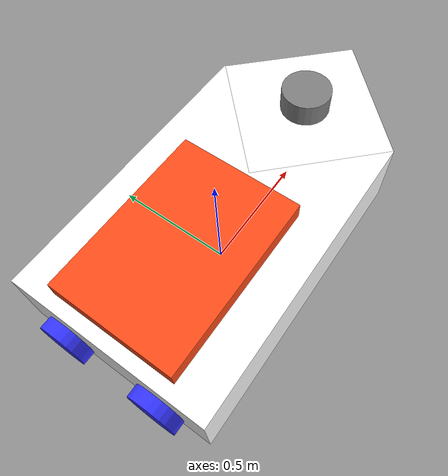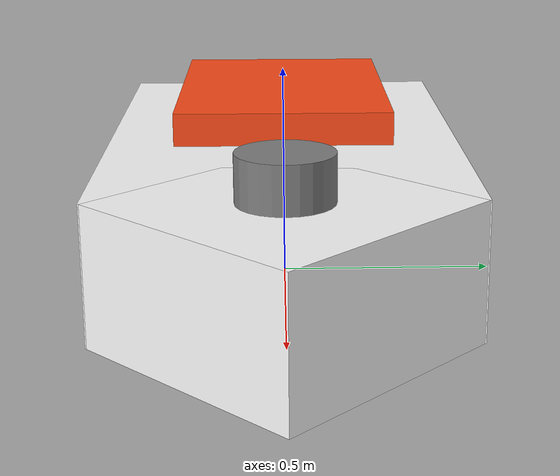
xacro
<?xml version="1.0"?>
<robot xmlns:xacro="http://www.ros.org/wiki/xacro">

    <xacro:macro name="inertial_cylinder" params="mass length radius *origin">
        <inertial>
            <xacro:insert_block name="origin"/>
            <mass value="${mass}" />
            <inertia ixx="${(1/12) * mass * (3*radius*radius + length*length)}" ixy="0.0" ixz="0.0"
                    iyy="${(1/12) * mass * (3*radius*radius + length*length)}" iyz="0.0"
                    izz="${(1/2) * mass * (radius*radius)}" />
        </inertial>
    </xacro:macro>

    <material name="white">
        <color rgba="1 1 1 1" />
    </material>
    <material name="orange">
        <color rgba="1 0.3 0.1 1"/>
    </material>
    <material name="blue">
        <color rgba="0.2 0.2 1 1"/>
    </material>
    <material name="black">
        <color rgba="0 0 0 1"/>
    </material>
    <material name="green">
        <color rgba="0 1 0 1"/>
    </material>
    <material name="red">
        <color rgba="1 0 0 1"/>
    </material>
    <material name="grey">
        <color rgba="0.5 0.5 0.5 1"/>
    </material>

    <link name="base_link">
        <linear_damping>5.0</linear_damping>
        <angular_damping>10.0</angular_damping>
    </link>

    <joint name="base_footprint_joint" type="fixed">
        <parent link="base_link"/>
        <child link="base_footprint"/>
        <origin xyz="0 0 0" rpy="0 0 0"/>
    </joint>

    <link name="base_footprint">
    </link>

    <joint name="vessel_joint" type="fixed">
        <parent link="base_link"/>
        <child link="vessel_core"/>
        <origin xyz="0 0 0" rpy="0 0 0"/>
    </joint>

    <link name="vessel_core">
        <visual name="vessel_core_visual">
            <origin xyz="0 0 0.2" rpy="0 0 0"/>
            <geometry>
                <box size="1.2 0.8 0.3"/>
            </geometry>
            <material name="white"/>
        </visual>
        <collision name="vessel_core_collision">
            <geometry>
                <box size="1.2 0.8 0.3"/>
            </geometry>
            <origin xyz="0 0 0.2"/>
        </collision>
        <inertial>
            <origin xyz="0 0 0.2" rpy="0 0 0"/>
            <mass value="10.0"/>
            <inertia ixx="1.0" ixy="0.0" ixz="0.0"
                    iyy="1.0" iyz="0.0"
                    izz="1.0"/>
        </inertial>

    </link>

    <link name="captain_room">
        <visual>
            <geometry>
                <box size="0.7 0.5 0.25"/>
            </geometry>
            <origin xyz="0 0 0" rpy="0 0 0"/>
            <material name="orange"/>
        </visual>
        <collision>
            <geometry>
                <box size="0.7 0.5 0.25"/>
            </geometry>
            <origin xyz="0 0 0"/>
        </collision>
        <inertial>
            <origin xyz="0 0 0" rpy="0 0 0"/>
            <mass value="1.0"/>
            <inertia ixx="0.1" ixy="0.0" ixz="0.0"
                    iyy="0.1" iyz="0.0"
                    izz="0.1"/>
        </inertial>
    </link>

    <joint name="captain_room_joint" type="fixed">
        <parent link="vessel_core"/>
        <child link="captain_room"/>
        <origin xyz="-0.2 0 0.3" rpy="0 0 0"/>
    </joint>

    <link name="vessel_nose">
        <visual>
            <geometry>
                <box size="0.562 0.562 0.3"/>
            </geometry>
            <origin xyz="0 0 0" rpy="0 0 0.785398"/>
            <material name="white"/>
        </visual>
        <inertial>
            <origin xyz="0 0 0" rpy="0 0 0"/>
            <mass value="1.0"/>
            <inertia ixx="0.1" ixy="0.0" ixz="0.0"
                    iyy="0.1" iyz="0.0"
                    izz="0.1"/>
        </inertial>
    </link>

    <joint name="vessel_nose_joint" type="fixed">
        <parent link="vessel_core"/>
        <child link="vessel_nose"/>
        <origin xyz="0.6 0 0.2" rpy="0 0 0"/>
    </joint>

    <link name="chimney">
        <visual>
            <geometry>
                <cylinder radius="0.1" length="0.3"/>
            </geometry>
            <origin xyz="0 0 0" rpy="0 0 0"/>
            <material name="grey"/>
        </visual>
        <collision>
            <geometry>
                <cylinder radius="0.1" length="0.3"/>
            </geometry>
            <origin xyz="0 0 0"/>
        </collision>
        <inertial>
            <origin xyz="0 0 0" rpy="0 0 0"/>
            <mass value="0.5"/>
            <inertia ixx="0.01" ixy="0.0" ixz="0.0"
                    iyy="0.01" iyz="0.0"
                    izz="0.01"/>
        </inertial>
    </link>

    <joint name="chimney_joint" type="fixed">
        <parent link="vessel_core"/>
        <child link="chimney"/>
        <origin xyz="0.6 0 0.3" rpy="0 0 0"/>
    </joint>

    <joint name="left_wheel_joint" type="continuous">
        <parent link="vessel_core"/>
        <child link="left_wheel"/>
        <origin xyz="-0.5 0.4 0.12" rpy="-${pi/2} 0 0" />
        <axis xyz="0 0 1"/>
        <limit effort="100" velocity="1.0" lower="-0.5" upper="0.5"/>
    </joint>

    <link name="left_wheel">
        <collision>
            <geometry>
                <cylinder radius="0.1" length="0.05"/>
            </geometry>
        </collision>
        <xacro:inertial_cylinder mass="0.2" length="0.05" radius="0.1">
            <origin xyz="0 0 0" rpy="0 0 0"/>
        </xacro:inertial_cylinder>
    </link>

    <joint name="right_wheel_joint" type="continuous">
        <parent link="vessel_core"/>
        <child link="right_wheel"/>
        <origin xyz="-0.5 -0.4 0.12" rpy="${pi/2} 0 0" />
        <axis xyz="0 0 -1"/>
        <limit effort="100" velocity="1.0" lower="-0.5" upper="0.5"/>
    </joint>

    <link name="right_wheel">
        <collision>
            <geometry>
                <cylinder radius="0.1" length="0.05"/>
            </geometry>
        </collision>
        <xacro:inertial_cylinder mass="0.2" length="0.05" radius="0.1">
            <origin xyz="0 0 0" rpy="0 0 0"/>
        </xacro:inertial_cylinder>
    </link>

        <!-- RIGHT PROPELLER -->
    <link name="right_propeller">
        <visual>
            <geometry>
                <cylinder radius="0.1" length="0.1"/>
            </geometry>
            <material name="blue"/>
        </visual>
        <collision>
            <geometry>
                <cylinder radius="0.1" length="0.1"/>
            </geometry>
        </collision>
        <xacro:inertial_cylinder mass="0.2" length="0.1" radius="0.1">
            <origin xyz="0 0 0" rpy="0 0 0"/>
        </xacro:inertial_cylinder>
    </link>

    <joint name="right_propeller_joint" type="fixed">
        <parent link="vessel_core"/>
        <child link="right_propeller"/>
        <origin xyz="-0.6 -0.2 0.14" rpy="1.5708 0 1.5708"/> <!-- Position and rotation of the propeller -->
    </joint>

        <gazebo reference="right_propeller">
            <material>Gazebo/Blue</material>
            <mu1>0.0001</mu1>
            <mu2>0.0001</mu2>
        </gazebo>

    <!-- LEFT PROPELLER -->
    <link name="left_propeller">
        <visual>
            <geometry>
                <cylinder radius="0.1" length="0.1"/>
            </geometry>
            <material name="blue"/>
        </visual>
        <collision>
            <geometry>
                <cylinder radius="0.1" length="0.1"/>
            </geometry>
        </collision>
        <xacro:inertial_cylinder mass="0.2" length="0.1" radius="0.1">
            <origin xyz="0 0 0" rpy="0 0 0"/>
        </xacro:inertial_cylinder>
    </link>

    <joint name="left_propeller_joint" type="fixed">
        <parent link="vessel_core"/>
        <child link="left_propeller"/>
        <origin xyz="-0.6 0.2 0.14" rpy="1.5708 0 1.5708"/> <!-- Position and rotation of the propeller -->
    </joint>

    <gazebo reference="left_propeller">
        <material>Gazebo/Blue</material>
        <mu1>0.0001</mu1>
        <mu2>0.0001</mu2>
    </gazebo>

    <!-- CASTER WHEEL LINK -->
    <joint name="caster_wheel_joint" type="fixed">
        <parent link="vessel_core"/>
        <child link="caster_wheel"/>
        <origin xyz="0.8 0 0.12"/>
    </joint>

    <link name="caster_wheel">
        <collision>
            <geometry>
                <sphere radius="0.1"/>
            </geometry>
        </collision>
        <inertial>
            <origin xyz="0 0 0" rpy="0 0 0"/>
            <mass value="0.1"/>
            <inertia ixx="0.01" ixy="0.0" ixz="0.0"
                    iyy="0.01" iyz="0.0"
                    izz="0.01"/>
        </inertial>
    </link>
    <gazebo reference="vessel_core">
        <material>Gazebo/White</material>
        <mu1>0.0001</mu1>
        <mu2>0.0001</mu2>
    </gazebo>

    <gazebo reference="captain_room">
        <material>Gazebo/Orange</material>
        <mu1>0.0001</mu1>
        <mu2>0.0001</mu2>
    </gazebo>
    <gazebo reference="vessel_nose">
        <material>Gazebo/White</material>
        <mu1>0.0001</mu1>
        <mu2>0.0001</mu2>
    </gazebo>
    <gazebo reference="chimney">
        <material>Gazebo/Grey</material>
        <mu1>0.0001</mu1>
        <mu2>0.0001</mu2>
    </gazebo>

    <gazebo reference="caster_wheel">
        <material>Gazebo/Orange</material>
        <mu1 value = "0.001"/>
        <mu2 value = "0.001"/>
    </gazebo>

</robot>
